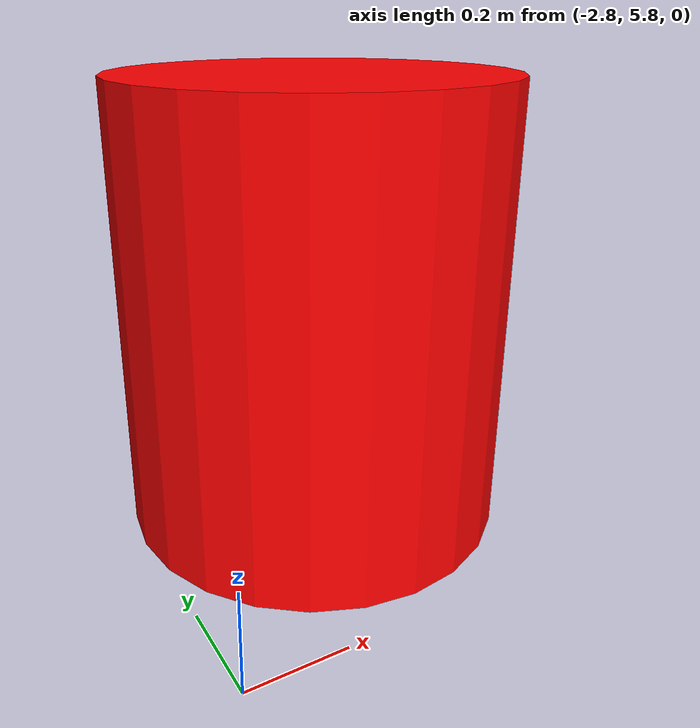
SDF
<sdf version='1.6'>
    <model name='cyl_1'>
      <pose>-2.48 6.14 0.5 0 -0 0</pose>
      <link name='cylinder_link'>
        <inertial>
          <inertia>
            <ixx>0.14580000000000001</ixx>
            <ixy>0</ixy>
            <ixz>0</ixz>
            <iyy>0.14580000000000001</iyy>
            <iyz>0</iyz>
            <izz>0.125</izz>
          </inertia>
          <mass>1</mass>
          <pose>0 0 0 0 -0 0</pose>
        </inertial>
        <collision name='cylinder_collision'>
          <geometry>
            <cylinder>
              <radius>0.36</radius>
              <length>0.84</length>
            </cylinder>
          </geometry>
          <surface>
            <friction>
              <ode/>
            </friction>
            <bounce/>
            <contact/>
          </surface>
        </collision>
        <visual name='cylinder_visual'>
          <geometry>
            <cylinder>
              <radius>0.36</radius>
              <length>0.84</length>
            </cylinder>
          </geometry>
          <material>
            <ambient>1 0 0 1</ambient>
            <diffuse>1 0 0 1</diffuse>
            <specular>1 0 0 1</specular>
          </material>
        </visual>
        <pose>0 0 0 0 -0 0</pose>
        <enable_wind>false</enable_wind>
      </link>
      <static>false</static>
      <self_collide>false</self_collide>
    </model>
    </sdf>
